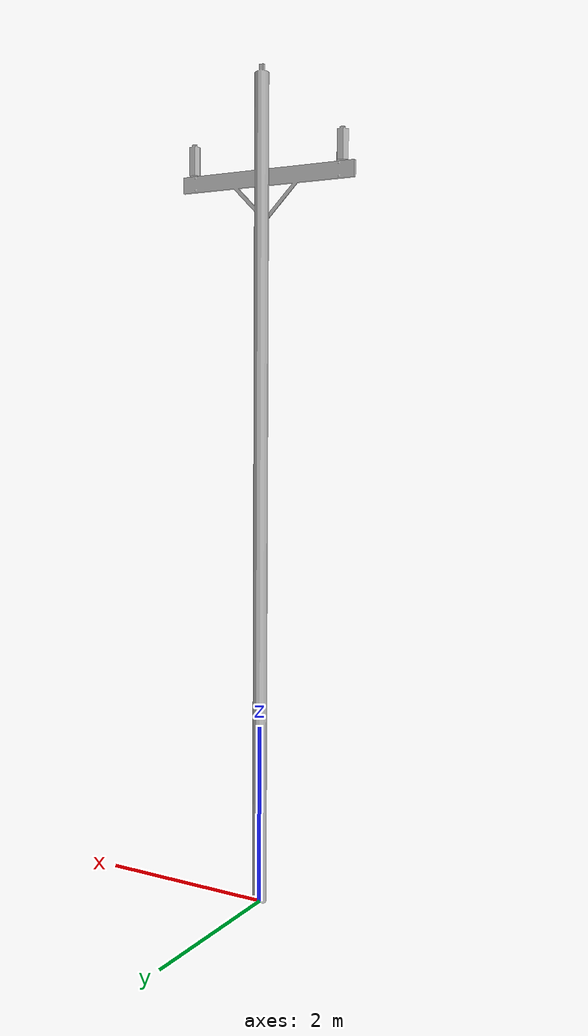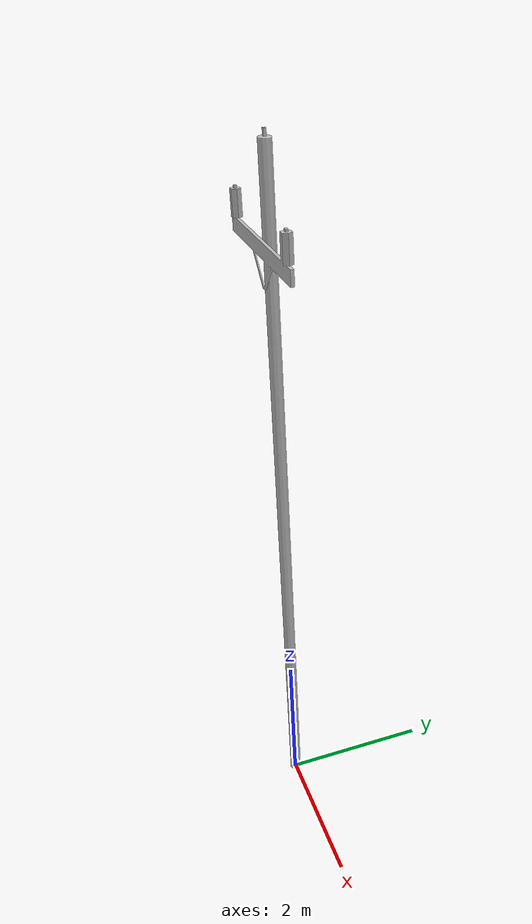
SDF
<?xml version="1.0" ?>
<sdf version="1.6">
  <model name="telephone_pole">
    <static>true</static>
    <link name="link">
      <collision name="collision_pole">
        <pose>0 0 4.572 0 0 0</pose>
        <geometry>
          <cylinder>
            <radius>0.07794752</radius>
            <length>9.144</length>
          </cylinder>
        </geometry>
      </collision>
      <collision name="collision_cross">
        <pose>0 -0.098806 8.048363126 0 0 0</pose>
        <geometry>
          <box>
            <size>2.11605876 0.041763442 0.177805588</size>
          </box>
        </geometry>
      </collision>

      <visual name="visual">
        <geometry>
          <mesh>
            <uri>model://telephone_pole/meshes/telephone_pole.dae</uri>
          </mesh>
        </geometry>
      </visual>
    </link>
  </model>
</sdf>
